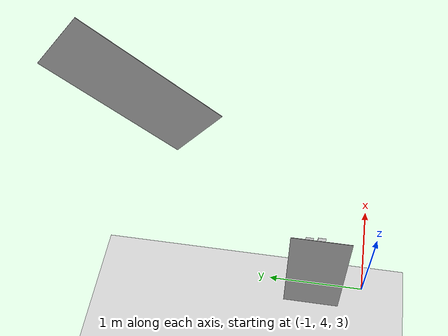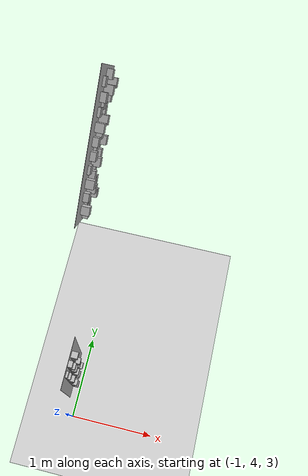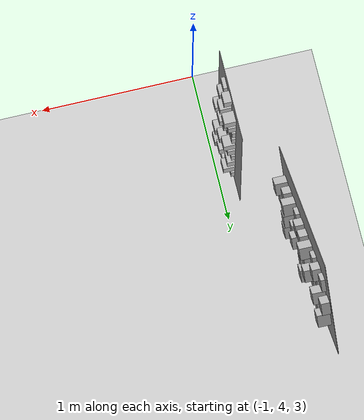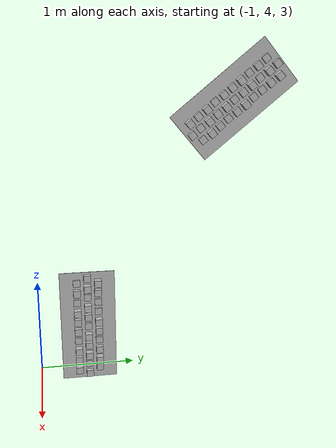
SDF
<sdf version="1.4">
 <world name="default">
  <model name="ground_plane">
   <static>1</static>
   <link name="link">
    <collision name="collision">
     <geometry><plane><normal>0 0 1</normal><size>100 100</size></plane></geometry>
     <surface><friction><ode><mu>100</mu><mu2>50</mu2></ode></friction></surface>
    </collision>
    <visual name="visual">
     <cast_shadows>0</cast_shadows>
     <geometry><plane><normal>0 0 1</normal><size>100 100</size></plane></geometry>
     <material>
      <script><uri>file://media/materials/scripts/gazebo.material</uri><name>Gazebo/Grey</name></script>
     </material>
    </visual>
    <velocity_decay><linear>0</linear><angular>0</angular></velocity_decay>
   </link>
  </model>
  <model name="frc2016_roughterrain_1">
   <static>1</static>
   <link name="link">
    <visual name="platform">
     <pose>0 0 0.08269 0 -0 0</pose>
     <geometry><box><size>1.27 0.5969 0.003175</size></box></geometry>
    </visual>
    <collision name="platform">
     <pose>0 0 0.08269 0 -0 0</pose>
     <geometry><box><size>1.27 0.5969 0.003175</size></box></geometry>
    </collision>
    <visual name="row1_block1_sm">
     <pose>0.51435 0.1143 0.09698 0 -0 0</pose>
     <geometry><box><size>0.0762 0.0762 0.0254</size></box></geometry>
    </visual>
    <collision name="row1_block1_sm">
     <pose>0.51435 0.1143 0.09698 0 -0 0</pose>
     <geometry><box><size>0.0762 0.0762 0.0254</size></box></geometry>
    </collision>
    <visual name="row1_block2_lg">
     <pose>0.40005 0.1143 0.12238 0 -0 0</pose>
     <geometry><box><size>0.0762 0.0762 0.0762</size></box></geometry>
    </visual>
    <collision name="row1_block2_lg">
     <pose>0.40005 0.1143 0.12238 0 -0 0</pose>
     <geometry><box><size>0.0762 0.0762 0.0762</size></box></geometry>
    </collision>
    <visual name="row1_block3_md">
     <pose>0.28575 0.1143 0.10968 0 -0 0</pose>
     <geometry><box><size>0.0762 0.0762 0.0508</size></box></geometry>
    </visual>
    <collision name="row1_block3_md">
     <pose>0.28575 0.1143 0.10968 0 -0 0</pose>
     <geometry><box><size>0.0762 0.0762 0.0508</size></box></geometry>
    </collision>
    <visual name="row1_block4_sm">
     <pose>0.17145 0.1143 0.09698 0 -0 0</pose>
     <geometry><box><size>0.0762 0.0762 0.0254</size></box></geometry>
    </visual>
    <collision name="row1_block4_sm">
     <pose>0.17145 0.1143 0.09698 0 -0 0</pose>
     <geometry><box><size>0.0762 0.0762 0.0254</size></box></geometry>
    </collision>
    <visual name="row1_block5_md">
     <pose>0.05715 0.1143 0.10968 0 -0 0</pose>
     <geometry><box><size>0.0762 0.0762 0.0508</size></box></geometry>
    </visual>
    <collision name="row1_block5_md">
     <pose>0.05715 0.1143 0.10968 0 -0 0</pose>
     <geometry><box><size>0.0762 0.0762 0.0508</size></box></geometry>
    </collision>
    <visual name="row1_block6_lg">
     <pose>-0.05715 0.1143 0.12238 0 -0 0</pose>
     <geometry><box><size>0.0762 0.0762 0.0762</size></box></geometry>
    </visual>
    <collision name="row1_block6_lg">
     <pose>-0.05715 0.1143 0.12238 0 -0 0</pose>
     <geometry><box><size>0.0762 0.0762 0.0762</size></box></geometry>
    </collision>
    <visual name="row1_block7_sm">
     <pose>-0.17145 0.1143 0.09698 0 -0 0</pose>
     <geometry><box><size>0.0762 0.0762 0.0254</size></box></geometry>
    </visual>
    <collision name="row1_block7_sm">
     <pose>-0.17145 0.1143 0.09698 0 -0 0</pose>
     <geometry><box><size>0.0762 0.0762 0.0254</size></box></geometry>
    </collision>
    <visual name="row1_block8_sm">
     <pose>-0.28575 0.1143 0.09698 0 -0 0</pose>
     <geometry><box><size>0.0762 0.0762 0.0254</size></box></geometry>
    </visual>
    <collision name="row1_block8_sm">
     <pose>-0.28575 0.1143 0.09698 0 -0 0</pose>
     <geometry><box><size>0.0762 0.0762 0.0254</size></box></geometry>
    </collision>
    <visual name="row1_block9_md">
     <pose>-0.40005 0.1143 0.10968 0 -0 0</pose>
     <geometry><box><size>0.0762 0.0762 0.0508</size></box></geometry>
    </visual>
    <collision name="row1_block9_md">
     <pose>-0.40005 0.1143 0.10968 0 -0 0</pose>
     <geometry><box><size>0.0762 0.0762 0.0508</size></box></geometry>
    </collision>
    <visual name="row1_block10_lg">
     <pose>-0.51435 0.1143 0.12238 0 -0 0</pose>
     <geometry><box><size>0.0762 0.0762 0.0762</size></box></geometry>
    </visual>
    <collision name="row1_block10_lg">
     <pose>-0.51435 0.1143 0.12238 0 -0 0</pose>
     <geometry><box><size>0.0762 0.0762 0.0762</size></box></geometry>
    </collision>
    <visual name="row2_block1_md">
     <pose>0.5715 0 0.10968 0 -0 0</pose>
     <geometry><box><size>0.0762 0.0762 0.0508</size></box></geometry>
    </visual>
    <collision name="row2_block1_md">
     <pose>0.5715 0 0.10968 0 -0 0</pose>
     <geometry><box><size>0.0762 0.0762 0.0508</size></box></geometry>
    </collision>
    <visual name="row2_block2_sm">
     <pose>0.4572 0 0.09698 0 -0 0</pose>
     <geometry><box><size>0.0762 0.0762 0.0254</size></box></geometry>
    </visual>
    <collision name="row2_block2_sm">
     <pose>0.4572 0 0.09698 0 -0 0</pose>
     <geometry><box><size>0.0762 0.0762 0.0254</size></box></geometry>
    </collision>
    <visual name="row2_block3_lg">
     <pose>0.3429 0 0.12238 0 -0 0</pose>
     <geometry><box><size>0.0762 0.0762 0.0762</size></box></geometry>
    </visual>
    <collision name="row2_block3_lg">
     <pose>0.3429 0 0.12238 0 -0 0</pose>
     <geometry><box><size>0.0762 0.0762 0.0762</size></box></geometry>
    </collision>
    <visual name="row2_block4_md">
     <pose>0.2286 0 0.10968 0 -0 0</pose>
     <geometry><box><size>0.0762 0.0762 0.0508</size></box></geometry>
    </visual>
    <collision name="row2_block4_md">
     <pose>0.2286 0 0.10968 0 -0 0</pose>
     <geometry><box><size>0.0762 0.0762 0.0508</size></box></geometry>
    </collision>
    <visual name="row2_block5_lg">
     <pose>0.1143 0 0.12238 0 -0 0</pose>
     <geometry><box><size>0.0762 0.0762 0.0762</size></box></geometry>
    </visual>
    <collision name="row2_block5_lg">
     <pose>0.1143 0 0.12238 0 -0 0</pose>
     <geometry><box><size>0.0762 0.0762 0.0762</size></box></geometry>
    </collision>
    <visual name="row2_block6_sm">
     <pose>0 0 0.09698 0 -0 0</pose>
     <geometry><box><size>0.0762 0.0762 0.0254</size></box></geometry>
    </visual>
    <collision name="row2_block6_sm">
     <pose>0 0 0.09698 0 -0 0</pose>
     <geometry><box><size>0.0762 0.0762 0.0254</size></box></geometry>
    </collision>
    <visual name="row2_block7_md">
     <pose>-0.1143 0 0.10968 0 -0 0</pose>
     <geometry><box><size>0.0762 0.0762 0.0508</size></box></geometry>
    </visual>
    <collision name="row2_block7_md">
     <pose>-0.1143 0 0.10968 0 -0 0</pose>
     <geometry><box><size>0.0762 0.0762 0.0508</size></box></geometry>
    </collision>
    <visual name="row2_block8_lg">
     <pose>-0.2286 0 0.12238 0 -0 0</pose>
     <geometry><box><size>0.0762 0.0762 0.0762</size></box></geometry>
    </visual>
    <collision name="row2_block8_lg">
     <pose>-0.2286 0 0.12238 0 -0 0</pose>
     <geometry><box><size>0.0762 0.0762 0.0762</size></box></geometry>
    </collision>
    <visual name="row2_block9_sm">
     <pose>-0.3429 0 0.09698 0 -0 0</pose>
     <geometry><box><size>0.0762 0.0762 0.0254</size></box></geometry>
    </visual>
    <collision name="row2_block9_sm">
     <pose>-0.3429 0 0.09698 0 -0 0</pose>
     <geometry><box><size>0.0762 0.0762 0.0254</size></box></geometry>
    </collision>
    <visual name="row2_block10_lg">
     <pose>-0.4572 0 0.12238 0 -0 0</pose>
     <geometry><box><size>0.0762 0.0762 0.0762</size></box></geometry>
    </visual>
    <collision name="row2_block10_lg">
     <pose>-0.4572 0 0.12238 0 -0 0</pose>
     <geometry><box><size>0.0762 0.0762 0.0762</size></box></geometry>
    </collision>
    <visual name="row2_block11_md">
     <pose>-0.5715 0 0.10968 0 -0 0</pose>
     <geometry><box><size>0.0762 0.0762 0.0508</size></box></geometry>
    </visual>
    <collision name="row2_block11_md">
     <pose>-0.5715 0 0.10968 0 -0 0</pose>
     <geometry><box><size>0.0762 0.0762 0.0508</size></box></geometry>
    </collision>
    <visual name="row3_block1_lg">
     <pose>0.51435 -0.1143 0.12238 0 -0 0</pose>
     <geometry><box><size>0.0762 0.0762 0.0762</size></box></geometry>
    </visual>
    <collision name="row3_block1_lg">
     <pose>0.51435 -0.1143 0.12238 0 -0 0</pose>
     <geometry><box><size>0.0762 0.0762 0.0762</size></box></geometry>
    </collision>
    <visual name="row3_block2_md">
     <pose>0.40005 -0.1143 0.10968 0 -0 0</pose>
     <geometry><box><size>0.0762 0.0762 0.0508</size></box></geometry>
    </visual>
    <collision name="row3_block2_md">
     <pose>0.40005 -0.1143 0.10968 0 -0 0</pose>
     <geometry><box><size>0.0762 0.0762 0.0508</size></box></geometry>
    </collision>
    <visual name="row3_block3_lg">
     <pose>0.28575 -0.1143 0.12238 0 -0 0</pose>
     <geometry><box><size>0.0762 0.0762 0.0762</size></box></geometry>
    </visual>
    <collision name="row3_block3_lg">
     <pose>0.28575 -0.1143 0.12238 0 -0 0</pose>
     <geometry><box><size>0.0762 0.0762 0.0762</size></box></geometry>
    </collision>
    <visual name="row3_block4_sm">
     <pose>0.17145 -0.1143 0.09698 0 -0 0</pose>
     <geometry><box><size>0.0762 0.0762 0.0254</size></box></geometry>
    </visual>
    <collision name="row3_block4_sm">
     <pose>0.17145 -0.1143 0.09698 0 -0 0</pose>
     <geometry><box><size>0.0762 0.0762 0.0254</size></box></geometry>
    </collision>
    <visual name="row3_block5_md">
     <pose>0.05715 -0.1143 0.10968 0 -0 0</pose>
     <geometry><box><size>0.0762 0.0762 0.0508</size></box></geometry>
    </visual>
    <collision name="row3_block5_md">
     <pose>0.05715 -0.1143 0.10968 0 -0 0</pose>
     <geometry><box><size>0.0762 0.0762 0.0508</size></box></geometry>
    </collision>
    <visual name="row3_block6_md">
     <pose>-0.05715 -0.1143 0.10968 0 -0 0</pose>
     <geometry><box><size>0.0762 0.0762 0.0508</size></box></geometry>
    </visual>
    <collision name="row3_block6_md">
     <pose>-0.05715 -0.1143 0.10968 0 -0 0</pose>
     <geometry><box><size>0.0762 0.0762 0.0508</size></box></geometry>
    </collision>
    <visual name="row3_block7_lg">
     <pose>-0.17145 -0.1143 0.12238 0 -0 0</pose>
     <geometry><box><size>0.0762 0.0762 0.0762</size></box></geometry>
    </visual>
    <collision name="row3_block7_lg">
     <pose>-0.17145 -0.1143 0.12238 0 -0 0</pose>
     <geometry><box><size>0.0762 0.0762 0.0762</size></box></geometry>
    </collision>
    <visual name="row3_block8_sm">
     <pose>-0.28575 -0.1143 0.09698 0 -0 0</pose>
     <geometry><box><size>0.0762 0.0762 0.0254</size></box></geometry>
    </visual>
    <collision name="row3_block8_sm">
     <pose>-0.28575 -0.1143 0.09698 0 -0 0</pose>
     <geometry><box><size>0.0762 0.0762 0.0254</size></box></geometry>
    </collision>
    <visual name="row3_block9_md">
     <pose>-0.40005 -0.1143 0.10968 0 -0 0</pose>
     <geometry><box><size>0.0762 0.0762 0.0508</size></box></geometry>
    </visual>
    <collision name="row3_block9_md">
     <pose>-0.40005 -0.1143 0.10968 0 -0 0</pose>
     <geometry><box><size>0.0762 0.0762 0.0508</size></box></geometry>
    </collision>
    <visual name="row3_block10_sm">
     <pose>-0.51435 -0.1143 0.09698 0 -0 0</pose>
     <geometry><box><size>0.0762 0.0762 0.0254</size></box></geometry>
    </visual>
    <collision name="row3_block10_sm">
     <pose>-0.51435 -0.1143 0.09698 0 -0 0</pose>
     <geometry><box><size>0.0762 0.0762 0.0254</size></box></geometry>
    </collision>
    <velocity_decay><linear>0</linear><angular>0</angular></velocity_decay>
   </link>
   <pose>-1.22276 6.11878 5.85869 -1.578 0.688332 -1.58078</pose>
  </model>
  <model name="frc2016_roughterrain_2">
   <static>1</static>
   <link name="link">
    <visual name="platform">
     <pose>0 0 0.08269 0 -0 0</pose>
     <geometry><box><size>1.27 0.5969 0.003175</size></box></geometry>
    </visual>
    <collision name="platform">
     <pose>0 0 0.08269 0 -0 0</pose>
     <geometry><box><size>1.27 0.5969 0.003175</size></box></geometry>
    </collision>
    <visual name="row1_block1_sm">
     <pose>0.51435 0.1143 0.09698 0 -0 0</pose>
     <geometry><box><size>0.0762 0.0762 0.0254</size></box></geometry>
    </visual>
    <collision name="row1_block1_sm">
     <pose>0.51435 0.1143 0.09698 0 -0 0</pose>
     <geometry><box><size>0.0762 0.0762 0.0254</size></box></geometry>
    </collision>
    <visual name="row1_block2_lg">
     <pose>0.40005 0.1143 0.12238 0 -0 0</pose>
     <geometry><box><size>0.0762 0.0762 0.0762</size></box></geometry>
    </visual>
    <collision name="row1_block2_lg">
     <pose>0.40005 0.1143 0.12238 0 -0 0</pose>
     <geometry><box><size>0.0762 0.0762 0.0762</size></box></geometry>
    </collision>
    <visual name="row1_block3_md">
     <pose>0.28575 0.1143 0.10968 0 -0 0</pose>
     <geometry><box><size>0.0762 0.0762 0.0508</size></box></geometry>
    </visual>
    <collision name="row1_block3_md">
     <pose>0.28575 0.1143 0.10968 0 -0 0</pose>
     <geometry><box><size>0.0762 0.0762 0.0508</size></box></geometry>
    </collision>
    <visual name="row1_block4_sm">
     <pose>0.17145 0.1143 0.09698 0 -0 0</pose>
     <geometry><box><size>0.0762 0.0762 0.0254</size></box></geometry>
    </visual>
    <collision name="row1_block4_sm">
     <pose>0.17145 0.1143 0.09698 0 -0 0</pose>
     <geometry><box><size>0.0762 0.0762 0.0254</size></box></geometry>
    </collision>
    <visual name="row1_block5_md">
     <pose>0.05715 0.1143 0.10968 0 -0 0</pose>
     <geometry><box><size>0.0762 0.0762 0.0508</size></box></geometry>
    </visual>
    <collision name="row1_block5_md">
     <pose>0.05715 0.1143 0.10968 0 -0 0</pose>
     <geometry><box><size>0.0762 0.0762 0.0508</size></box></geometry>
    </collision>
    <visual name="row1_block6_lg">
     <pose>-0.05715 0.1143 0.12238 0 -0 0</pose>
     <geometry><box><size>0.0762 0.0762 0.0762</size></box></geometry>
    </visual>
    <collision name="row1_block6_lg">
     <pose>-0.05715 0.1143 0.12238 0 -0 0</pose>
     <geometry><box><size>0.0762 0.0762 0.0762</size></box></geometry>
    </collision>
    <visual name="row1_block7_sm">
     <pose>-0.17145 0.1143 0.09698 0 -0 0</pose>
     <geometry><box><size>0.0762 0.0762 0.0254</size></box></geometry>
    </visual>
    <collision name="row1_block7_sm">
     <pose>-0.17145 0.1143 0.09698 0 -0 0</pose>
     <geometry><box><size>0.0762 0.0762 0.0254</size></box></geometry>
    </collision>
    <visual name="row1_block8_sm">
     <pose>-0.28575 0.1143 0.09698 0 -0 0</pose>
     <geometry><box><size>0.0762 0.0762 0.0254</size></box></geometry>
    </visual>
    <collision name="row1_block8_sm">
     <pose>-0.28575 0.1143 0.09698 0 -0 0</pose>
     <geometry><box><size>0.0762 0.0762 0.0254</size></box></geometry>
    </collision>
    <visual name="row1_block9_md">
     <pose>-0.40005 0.1143 0.10968 0 -0 0</pose>
     <geometry><box><size>0.0762 0.0762 0.0508</size></box></geometry>
    </visual>
    <collision name="row1_block9_md">
     <pose>-0.40005 0.1143 0.10968 0 -0 0</pose>
     <geometry><box><size>0.0762 0.0762 0.0508</size></box></geometry>
    </collision>
    <visual name="row1_block10_lg">
     <pose>-0.51435 0.1143 0.12238 0 -0 0</pose>
     <geometry><box><size>0.0762 0.0762 0.0762</size></box></geometry>
    </visual>
    <collision name="row1_block10_lg">
     <pose>-0.51435 0.1143 0.12238 0 -0 0</pose>
     <geometry><box><size>0.0762 0.0762 0.0762</size></box></geometry>
    </collision>
    <visual name="row2_block1_md">
     <pose>0.5715 0 0.10968 0 -0 0</pose>
     <geometry><box><size>0.0762 0.0762 0.0508</size></box></geometry>
    </visual>
    <collision name="row2_block1_md">
     <pose>0.5715 0 0.10968 0 -0 0</pose>
     <geometry><box><size>0.0762 0.0762 0.0508</size></box></geometry>
    </collision>
    <visual name="row2_block2_sm">
     <pose>0.4572 0 0.09698 0 -0 0</pose>
     <geometry><box><size>0.0762 0.0762 0.0254</size></box></geometry>
    </visual>
    <collision name="row2_block2_sm">
     <pose>0.4572 0 0.09698 0 -0 0</pose>
     <geometry><box><size>0.0762 0.0762 0.0254</size></box></geometry>
    </collision>
    <visual name="row2_block3_lg">
     <pose>0.3429 0 0.12238 0 -0 0</pose>
     <geometry><box><size>0.0762 0.0762 0.0762</size></box></geometry>
    </visual>
    <collision name="row2_block3_lg">
     <pose>0.3429 0 0.12238 0 -0 0</pose>
     <geometry><box><size>0.0762 0.0762 0.0762</size></box></geometry>
    </collision>
    <visual name="row2_block4_md">
     <pose>0.2286 0 0.10968 0 -0 0</pose>
     <geometry><box><size>0.0762 0.0762 0.0508</size></box></geometry>
    </visual>
    <collision name="row2_block4_md">
     <pose>0.2286 0 0.10968 0 -0 0</pose>
     <geometry><box><size>0.0762 0.0762 0.0508</size></box></geometry>
    </collision>
    <visual name="row2_block5_lg">
     <pose>0.1143 0 0.12238 0 -0 0</pose>
     <geometry><box><size>0.0762 0.0762 0.0762</size></box></geometry>
    </visual>
    <collision name="row2_block5_lg">
     <pose>0.1143 0 0.12238 0 -0 0</pose>
     <geometry><box><size>0.0762 0.0762 0.0762</size></box></geometry>
    </collision>
    <visual name="row2_block6_sm">
     <pose>0 0 0.09698 0 -0 0</pose>
     <geometry><box><size>0.0762 0.0762 0.0254</size></box></geometry>
    </visual>
    <collision name="row2_block6_sm">
     <pose>0 0 0.09698 0 -0 0</pose>
     <geometry><box><size>0.0762 0.0762 0.0254</size></box></geometry>
    </collision>
    <visual name="row2_block7_md">
     <pose>-0.1143 0 0.10968 0 -0 0</pose>
     <geometry><box><size>0.0762 0.0762 0.0508</size></box></geometry>
    </visual>
    <collision name="row2_block7_md">
     <pose>-0.1143 0 0.10968 0 -0 0</pose>
     <geometry><box><size>0.0762 0.0762 0.0508</size></box></geometry>
    </collision>
    <visual name="row2_block8_lg">
     <pose>-0.2286 0 0.12238 0 -0 0</pose>
     <geometry><box><size>0.0762 0.0762 0.0762</size></box></geometry>
    </visual>
    <collision name="row2_block8_lg">
     <pose>-0.2286 0 0.12238 0 -0 0</pose>
     <geometry><box><size>0.0762 0.0762 0.0762</size></box></geometry>
    </collision>
    <visual name="row2_block9_sm">
     <pose>-0.3429 0 0.09698 0 -0 0</pose>
     <geometry><box><size>0.0762 0.0762 0.0254</size></box></geometry>
    </visual>
    <collision name="row2_block9_sm">
     <pose>-0.3429 0 0.09698 0 -0 0</pose>
     <geometry><box><size>0.0762 0.0762 0.0254</size></box></geometry>
    </collision>
    <visual name="row2_block10_lg">
     <pose>-0.4572 0 0.12238 0 -0 0</pose>
     <geometry><box><size>0.0762 0.0762 0.0762</size></box></geometry>
    </visual>
    <collision name="row2_block10_lg">
     <pose>-0.4572 0 0.12238 0 -0 0</pose>
     <geometry><box><size>0.0762 0.0762 0.0762</size></box></geometry>
    </collision>
    <visual name="row2_block11_md">
     <pose>-0.5715 0 0.10968 0 -0 0</pose>
     <geometry><box><size>0.0762 0.0762 0.0508</size></box></geometry>
    </visual>
    <collision name="row2_block11_md">
     <pose>-0.5715 0 0.10968 0 -0 0</pose>
     <geometry><box><size>0.0762 0.0762 0.0508</size></box></geometry>
    </collision>
    <visual name="row3_block1_lg">
     <pose>0.51435 -0.1143 0.12238 0 -0 0</pose>
     <geometry><box><size>0.0762 0.0762 0.0762</size></box></geometry>
    </visual>
    <collision name="row3_block1_lg">
     <pose>0.51435 -0.1143 0.12238 0 -0 0</pose>
     <geometry><box><size>0.0762 0.0762 0.0762</size></box></geometry>
    </collision>
    <visual name="row3_block2_md">
     <pose>0.40005 -0.1143 0.10968 0 -0 0</pose>
     <geometry><box><size>0.0762 0.0762 0.0508</size></box></geometry>
    </visual>
    <collision name="row3_block2_md">
     <pose>0.40005 -0.1143 0.10968 0 -0 0</pose>
     <geometry><box><size>0.0762 0.0762 0.0508</size></box></geometry>
    </collision>
    <visual name="row3_block3_lg">
     <pose>0.28575 -0.1143 0.12238 0 -0 0</pose>
     <geometry><box><size>0.0762 0.0762 0.0762</size></box></geometry>
    </visual>
    <collision name="row3_block3_lg">
     <pose>0.28575 -0.1143 0.12238 0 -0 0</pose>
     <geometry><box><size>0.0762 0.0762 0.0762</size></box></geometry>
    </collision>
    <visual name="row3_block4_sm">
     <pose>0.17145 -0.1143 0.09698 0 -0 0</pose>
     <geometry><box><size>0.0762 0.0762 0.0254</size></box></geometry>
    </visual>
    <collision name="row3_block4_sm">
     <pose>0.17145 -0.1143 0.09698 0 -0 0</pose>
     <geometry><box><size>0.0762 0.0762 0.0254</size></box></geometry>
    </collision>
    <visual name="row3_block5_md">
     <pose>0.05715 -0.1143 0.10968 0 -0 0</pose>
     <geometry><box><size>0.0762 0.0762 0.0508</size></box></geometry>
    </visual>
    <collision name="row3_block5_md">
     <pose>0.05715 -0.1143 0.10968 0 -0 0</pose>
     <geometry><box><size>0.0762 0.0762 0.0508</size></box></geometry>
    </collision>
    <visual name="row3_block6_md">
     <pose>-0.05715 -0.1143 0.10968 0 -0 0</pose>
     <geometry><box><size>0.0762 0.0762 0.0508</size></box></geometry>
    </visual>
    <collision name="row3_block6_md">
     <pose>-0.05715 -0.1143 0.10968 0 -0 0</pose>
     <geometry><box><size>0.0762 0.0762 0.0508</size></box></geometry>
    </collision>
    <visual name="row3_block7_lg">
     <pose>-0.17145 -0.1143 0.12238 0 -0 0</pose>
     <geometry><box><size>0.0762 0.0762 0.0762</size></box></geometry>
    </visual>
    <collision name="row3_block7_lg">
     <pose>-0.17145 -0.1143 0.12238 0 -0 0</pose>
     <geometry><box><size>0.0762 0.0762 0.0762</size></box></geometry>
    </collision>
    <visual name="row3_block8_sm">
     <pose>-0.28575 -0.1143 0.09698 0 -0 0</pose>
     <geometry><box><size>0.0762 0.0762 0.0254</size></box></geometry>
    </visual>
    <collision name="row3_block8_sm">
     <pose>-0.28575 -0.1143 0.09698 0 -0 0</pose>
     <geometry><box><size>0.0762 0.0762 0.0254</size></box></geometry>
    </collision>
    <visual name="row3_block9_md">
     <pose>-0.40005 -0.1143 0.10968 0 -0 0</pose>
     <geometry><box><size>0.0762 0.0762 0.0508</size></box></geometry>
    </visual>
    <collision name="row3_block9_md">
     <pose>-0.40005 -0.1143 0.10968 0 -0 0</pose>
     <geometry><box><size>0.0762 0.0762 0.0508</size></box></geometry>
    </collision>
    <visual name="row3_block10_sm">
     <pose>-0.51435 -0.1143 0.09698 0 -0 0</pose>
     <geometry><box><size>0.0762 0.0762 0.0254</size></box></geometry>
    </visual>
    <collision name="row3_block10_sm">
     <pose>-0.51435 -0.1143 0.09698 0 -0 0</pose>
     <geometry><box><size>0.0762 0.0762 0.0254</size></box></geometry>
    </collision>
    <velocity_decay><linear>0</linear><angular>0</angular></velocity_decay>
   </link>
   <pose>-1.19947 4.52569 3.41334 3.14159 1.56177 3.14159</pose>
  </model>
 </world>
</sdf>
